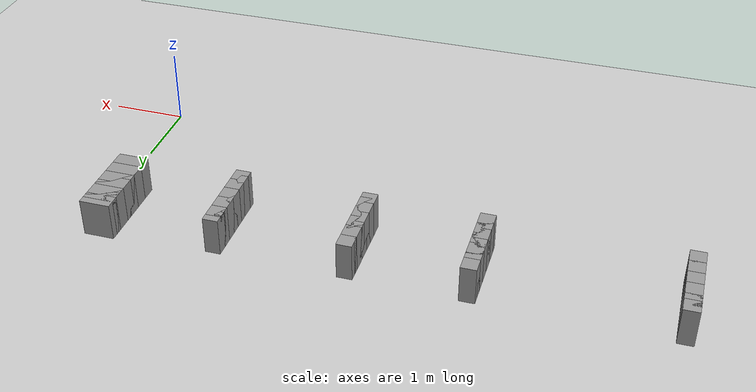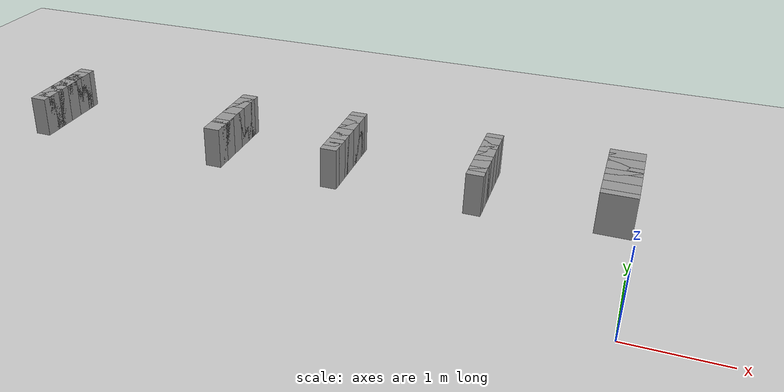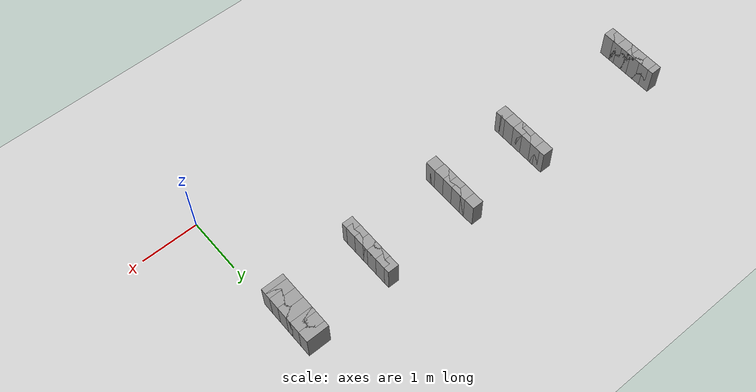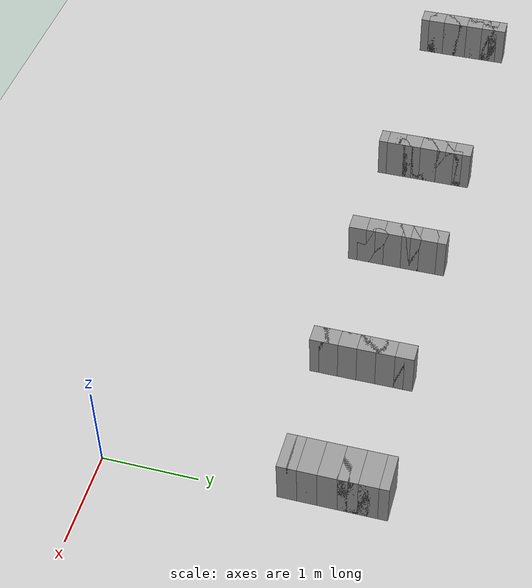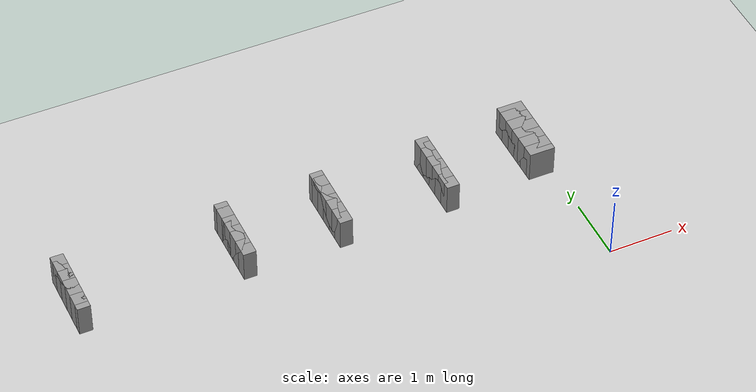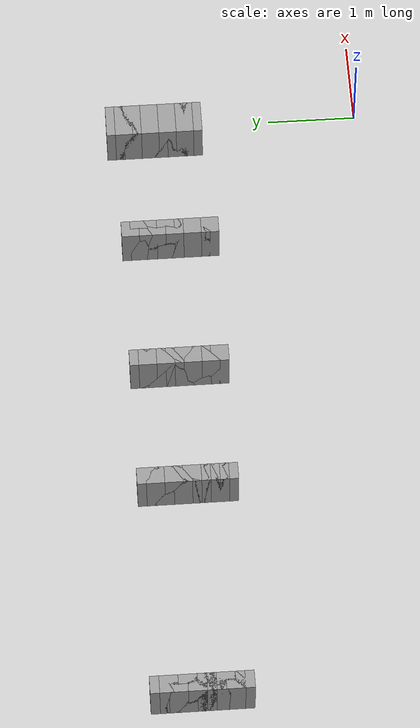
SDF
<sdf version="1.6">
 <world name="GridMap">
  <include><uri>model://sun</uri></include>
  <include><uri>model://ground_plane</uri></include>
  <model name="GridMap">
   <link name="Wall_(17.0,18.0)">
    <collision name="Wall_(17.0,18.0)_Collision">
     <geometry><box><size>0.2 0.2 0.5</size></box></geometry>
     <pose>-1.7000000000000002 1.8 0.25 0 -0 0</pose>
    </collision>
    <inertial>
     <mass>0.5</mass>
     <pose>0 0.01 0 0 0 0</pose>
     <inertia><ixx>0.004</ixx><ixy>0.001</ixy><ixz>0</ixz><iyy>0.006</iyy><iyz>0</iyz><izz>0.007</izz></inertia>
    </inertial>
    <visual name="Wall_(17.0,18.0)_Visual">
     <geometry><box><size>0.2 0.2 0.5</size></box></geometry>
     <pose>-1.7000000000000002 1.8 0.25 0 -0 0</pose>
     <material>
      <script><uri>file://media/materials/scripts/gazebo.material</uri><name>Gazebo/Grey</name></script>
      <ambient>1 1 1 1</ambient>
     </material>
     <meta><layer>0</layer></meta>
    </visual>
   </link>
   <link name="Wall_(34.0,18.0)">
    <collision name="Wall_(34.0,18.0)_Collision">
     <geometry><box><size>0.2 0.2 0.5</size></box></geometry>
     <pose>-3.4000000000000004 1.8 0.25 0 -0 0</pose>
    </collision>
    <inertial>
     <mass>0.5</mass>
     <pose>0 0.01 0 0 0 0</pose>
     <inertia><ixx>0.004</ixx><ixy>0.001</ixy><ixz>0</ixz><iyy>0.006</iyy><iyz>0</iyz><izz>0.007</izz></inertia>
    </inertial>
    <visual name="Wall_(34.0,18.0)_Visual">
     <geometry><box><size>0.2 0.2 0.5</size></box></geometry>
     <pose>-3.4000000000000004 1.8 0.25 0 -0 0</pose>
     <material>
      <script><uri>file://media/materials/scripts/gazebo.material</uri><name>Gazebo/Grey</name></script>
      <ambient>1 1 1 1</ambient>
     </material>
     <meta><layer>0</layer></meta>
    </visual>
   </link>
   <link name="Wall_(49.0,18.0)">
    <collision name="Wall_(49.0,18.0)_Collision">
     <geometry><box><size>0.2 0.2 0.5</size></box></geometry>
     <pose>-4.9 1.8 0.25 0 -0 0</pose>
    </collision>
    <inertial>
     <mass>0.5</mass>
     <pose>0 0.01 0 0 0 0</pose>
     <inertia><ixx>0.004</ixx><ixy>0.001</ixy><ixz>0</ixz><iyy>0.006</iyy><iyz>0</iyz><izz>0.007</izz></inertia>
    </inertial>
    <visual name="Wall_(49.0,18.0)_Visual">
     <geometry><box><size>0.2 0.2 0.5</size></box></geometry>
     <pose>-4.9 1.8 0.25 0 -0 0</pose>
     <material>
      <script><uri>file://media/materials/scripts/gazebo.material</uri><name>Gazebo/Grey</name></script>
      <ambient>1 1 1 1</ambient>
     </material>
     <meta><layer>0</layer></meta>
    </visual>
   </link>
   <link name="Wall_(74.0,18.0)">
    <collision name="Wall_(74.0,18.0)_Collision">
     <geometry><box><size>0.2 0.2 0.5</size></box></geometry>
     <pose>-7.4 1.8 0.25 0 -0 0</pose>
    </collision>
    <inertial>
     <mass>0.5</mass>
     <pose>0 0.01 0 0 0 0</pose>
     <inertia><ixx>0.004</ixx><ixy>0.001</ixy><ixz>0</ixz><iyy>0.006</iyy><iyz>0</iyz><izz>0.007</izz></inertia>
    </inertial>
    <visual name="Wall_(74.0,18.0)_Visual">
     <geometry><box><size>0.2 0.2 0.5</size></box></geometry>
     <pose>-7.4 1.8 0.25 0 -0 0</pose>
     <material>
      <script><uri>file://media/materials/scripts/gazebo.material</uri><name>Gazebo/Grey</name></script>
      <ambient>1 1 1 1</ambient>
     </material>
     <meta><layer>0</layer></meta>
    </visual>
   </link>
   <link name="Wall_(2.0,19.0)">
    <collision name="Wall_(2.0,19.0)_Collision">
     <geometry><box><size>0.4 0.2 0.5</size></box></geometry>
     <pose>-0.2 1.9000000000000001 0.25 0 -0 0</pose>
    </collision>
    <inertial>
     <mass>0.5</mass>
     <pose>0 0.01 0 0 0 0</pose>
     <inertia><ixx>0.004</ixx><ixy>0.001</ixy><ixz>0</ixz><iyy>0.006</iyy><iyz>0</iyz><izz>0.007</izz></inertia>
    </inertial>
    <visual name="Wall_(2.0,19.0)_Visual">
     <geometry><box><size>0.4 0.2 0.5</size></box></geometry>
     <pose>-0.2 1.9000000000000001 0.25 0 -0 0</pose>
     <material>
      <script><uri>file://media/materials/scripts/gazebo.material</uri><name>Gazebo/Grey</name></script>
      <ambient>1 1 1 1</ambient>
     </material>
     <meta><layer>0</layer></meta>
    </visual>
   </link>
   <link name="Wall_(17.0,19.0)">
    <collision name="Wall_(17.0,19.0)_Collision">
     <geometry><box><size>0.2 0.2 0.5</size></box></geometry>
     <pose>-1.7000000000000002 1.9000000000000001 0.25 0 -0 0</pose>
    </collision>
    <inertial>
     <mass>0.5</mass>
     <pose>0 0.01 0 0 0 0</pose>
     <inertia><ixx>0.004</ixx><ixy>0.001</ixy><ixz>0</ixz><iyy>0.006</iyy><iyz>0</iyz><izz>0.007</izz></inertia>
    </inertial>
    <visual name="Wall_(17.0,19.0)_Visual">
     <geometry><box><size>0.2 0.2 0.5</size></box></geometry>
     <pose>-1.7000000000000002 1.9000000000000001 0.25 0 -0 0</pose>
     <material>
      <script><uri>file://media/materials/scripts/gazebo.material</uri><name>Gazebo/Grey</name></script>
      <ambient>1 1 1 1</ambient>
     </material>
     <meta><layer>0</layer></meta>
    </visual>
   </link>
   <link name="Wall_(34.0,19.0)">
    <collision name="Wall_(34.0,19.0)_Collision">
     <geometry><box><size>0.2 0.2 0.5</size></box></geometry>
     <pose>-3.4000000000000004 1.9000000000000001 0.25 0 -0 0</pose>
    </collision>
    <inertial>
     <mass>0.5</mass>
     <pose>0 0.01 0 0 0 0</pose>
     <inertia><ixx>0.004</ixx><ixy>0.001</ixy><ixz>0</ixz><iyy>0.006</iyy><iyz>0</iyz><izz>0.007</izz></inertia>
    </inertial>
    <visual name="Wall_(34.0,19.0)_Visual">
     <geometry><box><size>0.2 0.2 0.5</size></box></geometry>
     <pose>-3.4000000000000004 1.9000000000000001 0.25 0 -0 0</pose>
     <material>
      <script><uri>file://media/materials/scripts/gazebo.material</uri><name>Gazebo/Grey</name></script>
      <ambient>1 1 1 1</ambient>
     </material>
     <meta><layer>0</layer></meta>
    </visual>
   </link>
   <link name="Wall_(49.0,19.0)">
    <collision name="Wall_(49.0,19.0)_Collision">
     <geometry><box><size>0.2 0.2 0.5</size></box></geometry>
     <pose>-4.9 1.9000000000000001 0.25 0 -0 0</pose>
    </collision>
    <inertial>
     <mass>0.5</mass>
     <pose>0 0.01 0 0 0 0</pose>
     <inertia><ixx>0.004</ixx><ixy>0.001</ixy><ixz>0</ixz><iyy>0.006</iyy><iyz>0</iyz><izz>0.007</izz></inertia>
    </inertial>
    <visual name="Wall_(49.0,19.0)_Visual">
     <geometry><box><size>0.2 0.2 0.5</size></box></geometry>
     <pose>-4.9 1.9000000000000001 0.25 0 -0 0</pose>
     <material>
      <script><uri>file://media/materials/scripts/gazebo.material</uri><name>Gazebo/Grey</name></script>
      <ambient>1 1 1 1</ambient>
     </material>
     <meta><layer>0</layer></meta>
    </visual>
   </link>
   <link name="Wall_(74.0,19.0)">
    <collision name="Wall_(74.0,19.0)_Collision">
     <geometry><box><size>0.2 0.2 0.5</size></box></geometry>
     <pose>-7.4 1.9000000000000001 0.25 0 -0 0</pose>
    </collision>
    <inertial>
     <mass>0.5</mass>
     <pose>0 0.01 0 0 0 0</pose>
     <inertia><ixx>0.004</ixx><ixy>0.001</ixy><ixz>0</ixz><iyy>0.006</iyy><iyz>0</iyz><izz>0.007</izz></inertia>
    </inertial>
    <visual name="Wall_(74.0,19.0)_Visual">
     <geometry><box><size>0.2 0.2 0.5</size></box></geometry>
     <pose>-7.4 1.9000000000000001 0.25 0 -0 0</pose>
     <material>
      <script><uri>file://media/materials/scripts/gazebo.material</uri><name>Gazebo/Grey</name></script>
      <ambient>1 1 1 1</ambient>
     </material>
     <meta><layer>0</layer></meta>
    </visual>
   </link>
   <link name="Wall_(2.0,20.0)">
    <collision name="Wall_(2.0,20.0)_Collision">
     <geometry><box><size>0.4 0.2 0.5</size></box></geometry>
     <pose>-0.2 2.0 0.25 0 -0 0</pose>
    </collision>
    <inertial>
     <mass>0.5</mass>
     <pose>0 0.01 0 0 0 0</pose>
     <inertia><ixx>0.004</ixx><ixy>0.001</ixy><ixz>0</ixz><iyy>0.006</iyy><iyz>0</iyz><izz>0.007</izz></inertia>
    </inertial>
    <visual name="Wall_(2.0,20.0)_Visual">
     <geometry><box><size>0.4 0.2 0.5</size></box></geometry>
     <pose>-0.2 2.0 0.25 0 -0 0</pose>
     <material>
      <script><uri>file://media/materials/scripts/gazebo.material</uri><name>Gazebo/Grey</name></script>
      <ambient>1 1 1 1</ambient>
     </material>
     <meta><layer>0</layer></meta>
    </visual>
   </link>
   <link name="Wall_(17.0,20.0)">
    <collision name="Wall_(17.0,20.0)_Collision">
     <geometry><box><size>0.2 0.2 0.5</size></box></geometry>
     <pose>-1.7000000000000002 2.0 0.25 0 -0 0</pose>
    </collision>
    <inertial>
     <mass>0.5</mass>
     <pose>0 0.01 0 0 0 0</pose>
     <inertia><ixx>0.004</ixx><ixy>0.001</ixy><ixz>0</ixz><iyy>0.006</iyy><iyz>0</iyz><izz>0.007</izz></inertia>
    </inertial>
    <visual name="Wall_(17.0,20.0)_Visual">
     <geometry><box><size>0.2 0.2 0.5</size></box></geometry>
     <pose>-1.7000000000000002 2.0 0.25 0 -0 0</pose>
     <material>
      <script><uri>file://media/materials/scripts/gazebo.material</uri><name>Gazebo/Grey</name></script>
      <ambient>1 1 1 1</ambient>
     </material>
     <meta><layer>0</layer></meta>
    </visual>
   </link>
   <link name="Wall_(34.0,20.0)">
    <collision name="Wall_(34.0,20.0)_Collision">
     <geometry><box><size>0.2 0.2 0.5</size></box></geometry>
     <pose>-3.4000000000000004 2.0 0.25 0 -0 0</pose>
    </collision>
    <inertial>
     <mass>0.5</mass>
     <pose>0 0.01 0 0 0 0</pose>
     <inertia><ixx>0.004</ixx><ixy>0.001</ixy><ixz>0</ixz><iyy>0.006</iyy><iyz>0</iyz><izz>0.007</izz></inertia>
    </inertial>
    <visual name="Wall_(34.0,20.0)_Visual">
     <geometry><box><size>0.2 0.2 0.5</size></box></geometry>
     <pose>-3.4000000000000004 2.0 0.25 0 -0 0</pose>
     <material>
      <script><uri>file://media/materials/scripts/gazebo.material</uri><name>Gazebo/Grey</name></script>
      <ambient>1 1 1 1</ambient>
     </material>
     <meta><layer>0</layer></meta>
    </visual>
   </link>
   <link name="Wall_(49.0,20.0)">
    <collision name="Wall_(49.0,20.0)_Collision">
     <geometry><box><size>0.2 0.2 0.5</size></box></geometry>
     <pose>-4.9 2.0 0.25 0 -0 0</pose>
    </collision>
    <inertial>
     <mass>0.5</mass>
     <pose>0 0.01 0 0 0 0</pose>
     <inertia><ixx>0.004</ixx><ixy>0.001</ixy><ixz>0</ixz><iyy>0.006</iyy><iyz>0</iyz><izz>0.007</izz></inertia>
    </inertial>
    <visual name="Wall_(49.0,20.0)_Visual">
     <geometry><box><size>0.2 0.2 0.5</size></box></geometry>
     <pose>-4.9 2.0 0.25 0 -0 0</pose>
     <material>
      <script><uri>file://media/materials/scripts/gazebo.material</uri><name>Gazebo/Grey</name></script>
      <ambient>1 1 1 1</ambient>
     </material>
     <meta><layer>0</layer></meta>
    </visual>
   </link>
   <link name="Wall_(74.0,20.0)">
    <collision name="Wall_(74.0,20.0)_Collision">
     <geometry><box><size>0.2 0.2 0.5</size></box></geometry>
     <pose>-7.4 2.0 0.25 0 -0 0</pose>
    </collision>
    <inertial>
     <mass>0.5</mass>
     <pose>0 0.01 0 0 0 0</pose>
     <inertia><ixx>0.004</ixx><ixy>0.001</ixy><ixz>0</ixz><iyy>0.006</iyy><iyz>0</iyz><izz>0.007</izz></inertia>
    </inertial>
    <visual name="Wall_(74.0,20.0)_Visual">
     <geometry><box><size>0.2 0.2 0.5</size></box></geometry>
     <pose>-7.4 2.0 0.25 0 -0 0</pose>
     <material>
      <script><uri>file://media/materials/scripts/gazebo.material</uri><name>Gazebo/Grey</name></script>
      <ambient>1 1 1 1</ambient>
     </material>
     <meta><layer>0</layer></meta>
    </visual>
   </link>
   <link name="Wall_(2.0,21.0)">
    <collision name="Wall_(2.0,21.0)_Collision">
     <geometry><box><size>0.4 0.2 0.5</size></box></geometry>
     <pose>-0.2 2.1 0.25 0 -0 0</pose>
    </collision>
    <inertial>
     <mass>0.5</mass>
     <pose>0 0.01 0 0 0 0</pose>
     <inertia><ixx>0.004</ixx><ixy>0.001</ixy><ixz>0</ixz><iyy>0.006</iyy><iyz>0</iyz><izz>0.007</izz></inertia>
    </inertial>
    <visual name="Wall_(2.0,21.0)_Visual">
     <geometry><box><size>0.4 0.2 0.5</size></box></geometry>
     <pose>-0.2 2.1 0.25 0 -0 0</pose>
     <material>
      <script><uri>file://media/materials/scripts/gazebo.material</uri><name>Gazebo/Grey</name></script>
      <ambient>1 1 1 1</ambient>
     </material>
     <meta><layer>0</layer></meta>
    </visual>
   </link>
   <link name="Wall_(17.0,21.0)">
    <collision name="Wall_(17.0,21.0)_Collision">
     <geometry><box><size>0.2 0.2 0.5</size></box></geometry>
     <pose>-1.7000000000000002 2.1 0.25 0 -0 0</pose>
    </collision>
    <inertial>
     <mass>0.5</mass>
     <pose>0 0.01 0 0 0 0</pose>
     <inertia><ixx>0.004</ixx><ixy>0.001</ixy><ixz>0</ixz><iyy>0.006</iyy><iyz>0</iyz><izz>0.007</izz></inertia>
    </inertial>
    <visual name="Wall_(17.0,21.0)_Visual">
     <geometry><box><size>0.2 0.2 0.5</size></box></geometry>
     <pose>-1.7000000000000002 2.1 0.25 0 -0 0</pose>
     <material>
      <script><uri>file://media/materials/scripts/gazebo.material</uri><name>Gazebo/Grey</name></script>
      <ambient>1 1 1 1</ambient>
     </material>
     <meta><layer>0</layer></meta>
    </visual>
   </link>
   <link name="Wall_(34.0,21.0)">
    <collision name="Wall_(34.0,21.0)_Collision">
     <geometry><box><size>0.2 0.2 0.5</size></box></geometry>
     <pose>-3.4000000000000004 2.1 0.25 0 -0 0</pose>
    </collision>
    <inertial>
     <mass>0.5</mass>
     <pose>0 0.01 0 0 0 0</pose>
     <inertia><ixx>0.004</ixx><ixy>0.001</ixy><ixz>0</ixz><iyy>0.006</iyy><iyz>0</iyz><izz>0.007</izz></inertia>
    </inertial>
    <visual name="Wall_(34.0,21.0)_Visual">
     <geometry><box><size>0.2 0.2 0.5</size></box></geometry>
     <pose>-3.4000000000000004 2.1 0.25 0 -0 0</pose>
     <material>
      <script><uri>file://media/materials/scripts/gazebo.material</uri><name>Gazebo/Grey</name></script>
      <ambient>1 1 1 1</ambient>
     </material>
     <meta><layer>0</layer></meta>
    </visual>
   </link>
   <link name="Wall_(49.0,21.0)">
    <collision name="Wall_(49.0,21.0)_Collision">
     <geometry><box><size>0.2 0.2 0.5</size></box></geometry>
     <pose>-4.9 2.1 0.25 0 -0 0</pose>
    </collision>
    <inertial>
     <mass>0.5</mass>
     <pose>0 0.01 0 0 0 0</pose>
     <inertia><ixx>0.004</ixx><ixy>0.001</ixy><ixz>0</ixz><iyy>0.006</iyy><iyz>0</iyz><izz>0.007</izz></inertia>
    </inertial>
    <visual name="Wall_(49.0,21.0)_Visual">
     <geometry><box><size>0.2 0.2 0.5</size></box></geometry>
     <pose>-4.9 2.1 0.25 0 -0 0</pose>
     <material>
      <script><uri>file://media/materials/scripts/gazebo.material</uri><name>Gazebo/Grey</name></script>
      <ambient>1 1 1 1</ambient>
     </material>
     <meta><layer>0</layer></meta>
    </visual>
   </link>
   <link name="Wall_(74.0,21.0)">
    <collision name="Wall_(74.0,21.0)_Collision">
     <geometry><box><size>0.2 0.2 0.5</size></box></geometry>
     <pose>-7.4 2.1 0.25 0 -0 0</pose>
    </collision>
    <inertial>
     <mass>0.5</mass>
     <pose>0 0.01 0 0 0 0</pose>
     <inertia><ixx>0.004</ixx><ixy>0.001</ixy><ixz>0</ixz><iyy>0.006</iyy><iyz>0</iyz><izz>0.007</izz></inertia>
    </inertial>
    <visual name="Wall_(74.0,21.0)_Visual">
     <geometry><box><size>0.2 0.2 0.5</size></box></geometry>
     <pose>-7.4 2.1 0.25 0 -0 0</pose>
     <material>
      <script><uri>file://media/materials/scripts/gazebo.material</uri><name>Gazebo/Grey</name></script>
      <ambient>1 1 1 1</ambient>
     </material>
     <meta><layer>0</layer></meta>
    </visual>
   </link>
   <link name="Wall_(2.0,22.0)">
    <collision name="Wall_(2.0,22.0)_Collision">
     <geometry><box><size>0.4 0.2 0.5</size></box></geometry>
     <pose>-0.2 2.2 0.25 0 -0 0</pose>
    </collision>
    <inertial>
     <mass>0.5</mass>
     <pose>0 0.01 0 0 0 0</pose>
     <inertia><ixx>0.004</ixx><ixy>0.001</ixy><ixz>0</ixz><iyy>0.006</iyy><iyz>0</iyz><izz>0.007</izz></inertia>
    </inertial>
    <visual name="Wall_(2.0,22.0)_Visual">
     <geometry><box><size>0.4 0.2 0.5</size></box></geometry>
     <pose>-0.2 2.2 0.25 0 -0 0</pose>
     <material>
      <script><uri>file://media/materials/scripts/gazebo.material</uri><name>Gazebo/Grey</name></script>
      <ambient>1 1 1 1</ambient>
     </material>
     <meta><layer>0</layer></meta>
    </visual>
   </link>
   <link name="Wall_(17.0,22.0)">
    <collision name="Wall_(17.0,22.0)_Collision">
     <geometry><box><size>0.2 0.2 0.5</size></box></geometry>
     <pose>-1.7000000000000002 2.2 0.25 0 -0 0</pose>
    </collision>
    <inertial>
     <mass>0.5</mass>
     <pose>0 0.01 0 0 0 0</pose>
     <inertia><ixx>0.004</ixx><ixy>0.001</ixy><ixz>0</ixz><iyy>0.006</iyy><iyz>0</iyz><izz>0.007</izz></inertia>
    </inertial>
    <visual name="Wall_(17.0,22.0)_Visual">
     <geometry><box><size>0.2 0.2 0.5</size></box></geometry>
     <pose>-1.7000000000000002 2.2 0.25 0 -0 0</pose>
     <material>
      <script><uri>file://media/materials/scripts/gazebo.material</uri><name>Gazebo/Grey</name></script>
      <ambient>1 1 1 1</ambient>
     </material>
     <meta><layer>0</layer></meta>
    </visual>
   </link>
   <link name="Wall_(34.0,22.0)">
    <collision name="Wall_(34.0,22.0)_Collision">
     <geometry><box><size>0.2 0.2 0.5</size></box></geometry>
     <pose>-3.4000000000000004 2.2 0.25 0 -0 0</pose>
    </collision>
    <inertial>
     <mass>0.5</mass>
     <pose>0 0.01 0 0 0 0</pose>
     <inertia><ixx>0.004</ixx><ixy>0.001</ixy><ixz>0</ixz><iyy>0.006</iyy><iyz>0</iyz><izz>0.007</izz></inertia>
    </inertial>
    <visual name="Wall_(34.0,22.0)_Visual">
     <geometry><box><size>0.2 0.2 0.5</size></box></geometry>
     <pose>-3.4000000000000004 2.2 0.25 0 -0 0</pose>
     <material>
      <script><uri>file://media/materials/scripts/gazebo.material</uri><name>Gazebo/Grey</name></script>
      <ambient>1 1 1 1</ambient>
     </material>
     <meta><layer>0</layer></meta>
    </visual>
   </link>
   <link name="Wall_(49.0,22.0)">
    <collision name="Wall_(49.0,22.0)_Collision">
     <geometry><box><size>0.2 0.2 0.5</size></box></geometry>
     <pose>-4.9 2.2 0.25 0 -0 0</pose>
    </collision>
    <inertial>
     <mass>0.5</mass>
     <pose>0 0.01 0 0 0 0</pose>
     <inertia><ixx>0.004</ixx><ixy>0.001</ixy><ixz>0</ixz><iyy>0.006</iyy><iyz>0</iyz><izz>0.007</izz></inertia>
    </inertial>
    <visual name="Wall_(49.0,22.0)_Visual">
     <geometry><box><size>0.2 0.2 0.5</size></box></geometry>
     <pose>-4.9 2.2 0.25 0 -0 0</pose>
     <material>
      <script><uri>file://media/materials/scripts/gazebo.material</uri><name>Gazebo/Grey</name></script>
      <ambient>1 1 1 1</ambient>
     </material>
     <meta><layer>0</layer></meta>
    </visual>
   </link>
   <link name="Wall_(74.0,22.0)">
    <collision name="Wall_(74.0,22.0)_Collision">
     <geometry><box><size>0.2 0.2 0.5</size></box></geometry>
     <pose>-7.4 2.2 0.25 0 -0 0</pose>
    </collision>
    <inertial>
     <mass>0.5</mass>
     <pose>0 0.01 0 0 0 0</pose>
     <inertia><ixx>0.004</ixx><ixy>0.001</ixy><ixz>0</ixz><iyy>0.006</iyy><iyz>0</iyz><izz>0.007</izz></inertia>
    </inertial>
    <visual name="Wall_(74.0,22.0)_Visual">
     <geometry><box><size>0.2 0.2 0.5</size></box></geometry>
     <pose>-7.4 2.2 0.25 0 -0 0</pose>
     <material>
      <script><uri>file://media/materials/scripts/gazebo.material</uri><name>Gazebo/Grey</name></script>
      <ambient>1 1 1 1</ambient>
     </material>
     <meta><layer>0</layer></meta>
    </visual>
   </link>
   <link name="Wall_(2.0,23.0)">
    <collision name="Wall_(2.0,23.0)_Collision">
     <geometry><box><size>0.4 0.2 0.5</size></box></geometry>
     <pose>-0.2 2.3000000000000003 0.25 0 -0 0</pose>
    </collision>
    <inertial>
     <mass>0.5</mass>
     <pose>0 0.01 0 0 0 0</pose>
     <inertia><ixx>0.004</ixx><ixy>0.001</ixy><ixz>0</ixz><iyy>0.006</iyy><iyz>0</iyz><izz>0.007</izz></inertia>
    </inertial>
    <visual name="Wall_(2.0,23.0)_Visual">
     <geometry><box><size>0.4 0.2 0.5</size></box></geometry>
     <pose>-0.2 2.3000000000000003 0.25 0 -0 0</pose>
     <material>
      <script><uri>file://media/materials/scripts/gazebo.material</uri><name>Gazebo/Grey</name></script>
      <ambient>1 1 1 1</ambient>
     </material>
     <meta><layer>0</layer></meta>
    </visual>
   </link>
   <link name="Wall_(17.0,23.0)">
    <collision name="Wall_(17.0,23.0)_Collision">
     <geometry><box><size>0.2 0.2 0.5</size></box></geometry>
     <pose>-1.7000000000000002 2.3000000000000003 0.25 0 -0 0</pose>
    </collision>
    <inertial>
     <mass>0.5</mass>
     <pose>0 0.01 0 0 0 0</pose>
     <inertia><ixx>0.004</ixx><ixy>0.001</ixy><ixz>0</ixz><iyy>0.006</iyy><iyz>0</iyz><izz>0.007</izz></inertia>
    </inertial>
    <visual name="Wall_(17.0,23.0)_Visual">
     <geometry><box><size>0.2 0.2 0.5</size></box></geometry>
     <pose>-1.7000000000000002 2.3000000000000003 0.25 0 -0 0</pose>
     <material>
      <script><uri>file://media/materials/scripts/gazebo.material</uri><name>Gazebo/Grey</name></script>
      <ambient>1 1 1 1</ambient>
     </material>
     <meta><layer>0</layer></meta>
    </visual>
   </link>
   <link name="Wall_(34.0,23.0)">
    <collision name="Wall_(34.0,23.0)_Collision">
     <geometry><box><size>0.2 0.2 0.5</size></box></geometry>
     <pose>-3.4000000000000004 2.3000000000000003 0.25 0 -0 0</pose>
    </collision>
    <inertial>
     <mass>0.5</mass>
     <pose>0 0.01 0 0 0 0</pose>
     <inertia><ixx>0.004</ixx><ixy>0.001</ixy><ixz>0</ixz><iyy>0.006</iyy><iyz>0</iyz><izz>0.007</izz></inertia>
    </inertial>
    <visual name="Wall_(34.0,23.0)_Visual">
     <geometry><box><size>0.2 0.2 0.5</size></box></geometry>
     <pose>-3.4000000000000004 2.3000000000000003 0.25 0 -0 0</pose>
     <material>
      <script><uri>file://media/materials/scripts/gazebo.material</uri><name>Gazebo/Grey</name></script>
      <ambient>1 1 1 1</ambient>
     </material>
     <meta><layer>0</layer></meta>
    </visual>
   </link>
   <link name="Wall_(49.0,23.0)">
    <collision name="Wall_(49.0,23.0)_Collision">
     <geometry><box><size>0.2 0.2 0.5</size></box></geometry>
     <pose>-4.9 2.3000000000000003 0.25 0 -0 0</pose>
    </collision>
    <inertial>
     <mass>0.5</mass>
     <pose>0 0.01 0 0 0 0</pose>
     <inertia><ixx>0.004</ixx><ixy>0.001</ixy><ixz>0</ixz><iyy>0.006</iyy><iyz>0</iyz><izz>0.007</izz></inertia>
    </inertial>
    <visual name="Wall_(49.0,23.0)_Visual">
     <geometry><box><size>0.2 0.2 0.5</size></box></geometry>
     <pose>-4.9 2.3000000000000003 0.25 0 -0 0</pose>
     <material>
      <script><uri>file://media/materials/scripts/gazebo.material</uri><name>Gazebo/Grey</name></script>
      <ambient>1 1 1 1</ambient>
     </material>
     <meta><layer>0</layer></meta>
    </visual>
   </link>
   <link name="Wall_(74.0,23.0)">
    <collision name="Wall_(74.0,23.0)_Collision">
     <geometry><box><size>0.2 0.2 0.5</size></box></geometry>
     <pose>-7.4 2.3000000000000003 0.25 0 -0 0</pose>
    </collision>
    <inertial>
     <mass>0.5</mass>
     <pose>0 0.01 0 0 0 0</pose>
     <inertia><ixx>0.004</ixx><ixy>0.001</ixy><ixz>0</ixz><iyy>0.006</iyy><iyz>0</iyz><izz>0.007</izz></inertia>
    </inertial>
    <visual name="Wall_(74.0,23.0)_Visual">
     <geometry><box><size>0.2 0.2 0.5</size></box></geometry>
     <pose>-7.4 2.3000000000000003 0.25 0 -0 0</pose>
     <material>
      <script><uri>file://media/materials/scripts/gazebo.material</uri><name>Gazebo/Grey</name></script>
      <ambient>1 1 1 1</ambient>
     </material>
     <meta><layer>0</layer></meta>
    </visual>
   </link>
   <link name="Wall_(2.0,24.0)">
    <collision name="Wall_(2.0,24.0)_Collision">
     <geometry><box><size>0.4 0.2 0.5</size></box></geometry>
     <pose>-0.2 2.4000000000000004 0.25 0 -0 0</pose>
    </collision>
    <inertial>
     <mass>0.5</mass>
     <pose>0 0.01 0 0 0 0</pose>
     <inertia><ixx>0.004</ixx><ixy>0.001</ixy><ixz>0</ixz><iyy>0.006</iyy><iyz>0</iyz><izz>0.007</izz></inertia>
    </inertial>
    <visual name="Wall_(2.0,24.0)_Visual">
     <geometry><box><size>0.4 0.2 0.5</size></box></geometry>
     <pose>-0.2 2.4000000000000004 0.25 0 -0 0</pose>
     <material>
      <script><uri>file://media/materials/scripts/gazebo.material</uri><name>Gazebo/Grey</name></script>
      <ambient>1 1 1 1</ambient>
     </material>
     <meta><layer>0</layer></meta>
    </visual>
   </link>
   <link name="Wall_(17.0,24.0)">
    <collision name="Wall_(17.0,24.0)_Collision">
     <geometry><box><size>0.2 0.2 0.5</size></box></geometry>
     <pose>-1.7000000000000002 2.4000000000000004 0.25 0 -0 0</pose>
    </collision>
    <inertial>
     <mass>0.5</mass>
     <pose>0 0.01 0 0 0 0</pose>
     <inertia><ixx>0.004</ixx><ixy>0.001</ixy><ixz>0</ixz><iyy>0.006</iyy><iyz>0</iyz><izz>0.007</izz></inertia>
    </inertial>
    <visual name="Wall_(17.0,24.0)_Visual">
     <geometry><box><size>0.2 0.2 0.5</size></box></geometry>
     <pose>-1.7000000000000002 2.4000000000000004 0.25 0 -0 0</pose>
     <material>
      <script><uri>file://media/materials/scripts/gazebo.material</uri><name>Gazebo/Grey</name></script>
      <ambient>1 1 1 1</ambient>
     </material>
     <meta><layer>0</layer></meta>
    </visual>
   </link>
   <link name="Wall_(34.0,24.0)">
    <collision name="Wall_(34.0,24.0)_Collision">
     <geometry><box><size>0.2 0.2 0.5</size></box></geometry>
     <pose>-3.4000000000000004 2.4000000000000004 0.25 0 -0 0</pose>
    </collision>
    <inertial>
     <mass>0.5</mass>
     <pose>0 0.01 0 0 0 0</pose>
     <inertia><ixx>0.004</ixx><ixy>0.001</ixy><ixz>0</ixz><iyy>0.006</iyy><iyz>0</iyz><izz>0.007</izz></inertia>
    </inertial>
    <visual name="Wall_(34.0,24.0)_Visual">
     <geometry><box><size>0.2 0.2 0.5</size></box></geometry>
     <pose>-3.4000000000000004 2.4000000000000004 0.25 0 -0 0</pose>
     <material>
      <script><uri>file://media/materials/scripts/gazebo.material</uri><name>Gazebo/Grey</name></script>
      <ambient>1 1 1 1</ambient>
     </material>
     <meta><layer>0</layer></meta>
    </visual>
   </link>
   <link name="Wall_(49.0,24.0)">
    <collision name="Wall_(49.0,24.0)_Collision">
     <geometry><box><size>0.2 0.2 0.5</size></box></geometry>
     <pose>-4.9 2.4000000000000004 0.25 0 -0 0</pose>
    </collision>
    <inertial>
     <mass>0.5</mass>
     <pose>0 0.01 0 0 0 0</pose>
     <inertia><ixx>0.004</ixx><ixy>0.001</ixy><ixz>0</ixz><iyy>0.006</iyy><iyz>0</iyz><izz>0.007</izz></inertia>
    </inertial>
    <visual name="Wall_(49.0,24.0)_Visual">
     <geometry><box><size>0.2 0.2 0.5</size></box></geometry>
     <pose>-4.9 2.4000000000000004 0.25 0 -0 0</pose>
     <material>
      <script><uri>file://media/materials/scripts/gazebo.material</uri><name>Gazebo/Grey</name></script>
      <ambient>1 1 1 1</ambient>
     </material>
     <meta><layer>0</layer></meta>
    </visual>
   </link>
   <link name="Wall_(74.0,24.0)">
    <collision name="Wall_(74.0,24.0)_Collision">
     <geometry><box><size>0.2 0.2 0.5</size></box></geometry>
     <pose>-7.4 2.4000000000000004 0.25 0 -0 0</pose>
    </collision>
    <inertial>
     <mass>0.5</mass>
     <pose>0 0.01 0 0 0 0</pose>
     <inertia><ixx>0.004</ixx><ixy>0.001</ixy><ixz>0</ixz><iyy>0.006</iyy><iyz>0</iyz><izz>0.007</izz></inertia>
    </inertial>
    <visual name="Wall_(74.0,24.0)_Visual">
     <geometry><box><size>0.2 0.2 0.5</size></box></geometry>
     <pose>-7.4 2.4000000000000004 0.25 0 -0 0</pose>
     <material>
      <script><uri>file://media/materials/scripts/gazebo.material</uri><name>Gazebo/Grey</name></script>
      <ambient>1 1 1 1</ambient>
     </material>
     <meta><layer>0</layer></meta>
    </visual>
   </link>
   <link name="Wall_(2.0,25.0)">
    <collision name="Wall_(2.0,25.0)_Collision">
     <geometry><box><size>0.4 0.2 0.5</size></box></geometry>
     <pose>-0.2 2.5 0.25 0 -0 0</pose>
    </collision>
    <inertial>
     <mass>0.5</mass>
     <pose>0 0.01 0 0 0 0</pose>
     <inertia><ixx>0.004</ixx><ixy>0.001</ixy><ixz>0</ixz><iyy>0.006</iyy><iyz>0</iyz><izz>0.007</izz></inertia>
    </inertial>
    <visual name="Wall_(2.0,25.0)_Visual">
     <geometry><box><size>0.4 0.2 0.5</size></box></geometry>
     <pose>-0.2 2.5 0.25 0 -0 0</pose>
     <material>
      <script><uri>file://media/materials/scripts/gazebo.material</uri><name>Gazebo/Grey</name></script>
      <ambient>1 1 1 1</ambient>
     </material>
     <meta><layer>0</layer></meta>
    </visual>
   </link>
   <link name="Wall_(17.0,25.0)">
    <collision name="Wall_(17.0,25.0)_Collision">
     <geometry><box><size>0.2 0.2 0.5</size></box></geometry>
     <pose>-1.7000000000000002 2.5 0.25 0 -0 0</pose>
    </collision>
    <inertial>
     <mass>0.5</mass>
     <pose>0 0.01 0 0 0 0</pose>
     <inertia><ixx>0.004</ixx><ixy>0.001</ixy><ixz>0</ixz><iyy>0.006</iyy><iyz>0</iyz><izz>0.007</izz></inertia>
    </inertial>
    <visual name="Wall_(17.0,25.0)_Visual">
     <geometry><box><size>0.2 0.2 0.5</size></box></geometry>
     <pose>-1.7000000000000002 2.5 0.25 0 -0 0</pose>
     <material>
      <script><uri>file://media/materials/scripts/gazebo.material</uri><name>Gazebo/Grey</name></script>
      <ambient>1 1 1 1</ambient>
     </material>
     <meta><layer>0</layer></meta>
    </visual>
   </link>
   <link name="Wall_(34.0,25.0)">
    <collision name="Wall_(34.0,25.0)_Collision">
     <geometry><box><size>0.2 0.2 0.5</size></box></geometry>
     <pose>-3.4000000000000004 2.5 0.25 0 -0 0</pose>
    </collision>
    <inertial>
     <mass>0.5</mass>
     <pose>0 0.01 0 0 0 0</pose>
     <inertia><ixx>0.004</ixx><ixy>0.001</ixy><ixz>0</ixz><iyy>0.006</iyy><iyz>0</iyz><izz>0.007</izz></inertia>
    </inertial>
    <visual name="Wall_(34.0,25.0)_Visual">
     <geometry><box><size>0.2 0.2 0.5</size></box></geometry>
     <pose>-3.4000000000000004 2.5 0.25 0 -0 0</pose>
     <material>
      <script><uri>file://media/materials/scripts/gazebo.material</uri><name>Gazebo/Grey</name></script>
      <ambient>1 1 1 1</ambient>
     </material>
     <meta><layer>0</layer></meta>
    </visual>
   </link>
   <link name="Wall_(49.0,25.0)">
    <collision name="Wall_(49.0,25.0)_Collision">
     <geometry><box><size>0.2 0.2 0.5</size></box></geometry>
     <pose>-4.9 2.5 0.25 0 -0 0</pose>
    </collision>
    <inertial>
     <mass>0.5</mass>
     <pose>0 0.01 0 0 0 0</pose>
     <inertia><ixx>0.004</ixx><ixy>0.001</ixy><ixz>0</ixz><iyy>0.006</iyy><iyz>0</iyz><izz>0.007</izz></inertia>
    </inertial>
    <visual name="Wall_(49.0,25.0)_Visual">
     <geometry><box><size>0.2 0.2 0.5</size></box></geometry>
     <pose>-4.9 2.5 0.25 0 -0 0</pose>
     <material>
      <script><uri>file://media/materials/scripts/gazebo.material</uri><name>Gazebo/Grey</name></script>
      <ambient>1 1 1 1</ambient>
     </material>
     <meta><layer>0</layer></meta>
    </visual>
   </link>
   <link name="Wall_(74.0,25.0)">
    <collision name="Wall_(74.0,25.0)_Collision">
     <geometry><box><size>0.2 0.2 0.5</size></box></geometry>
     <pose>-7.4 2.5 0.25 0 -0 0</pose>
    </collision>
    <inertial>
     <mass>0.5</mass>
     <pose>0 0.01 0 0 0 0</pose>
     <inertia><ixx>0.004</ixx><ixy>0.001</ixy><ixz>0</ixz><iyy>0.006</iyy><iyz>0</iyz><izz>0.007</izz></inertia>
    </inertial>
    <visual name="Wall_(74.0,25.0)_Visual">
     <geometry><box><size>0.2 0.2 0.5</size></box></geometry>
     <pose>-7.4 2.5 0.25 0 -0 0</pose>
     <material>
      <script><uri>file://media/materials/scripts/gazebo.material</uri><name>Gazebo/Grey</name></script>
      <ambient>1 1 1 1</ambient>
     </material>
     <meta><layer>0</layer></meta>
    </visual>
   </link>
   <link name="Wall_(2.0,26.0)">
    <collision name="Wall_(2.0,26.0)_Collision">
     <geometry><box><size>0.4 0.2 0.5</size></box></geometry>
     <pose>-0.2 2.6 0.25 0 -0 0</pose>
    </collision>
    <inertial>
     <mass>0.5</mass>
     <pose>0 0.01 0 0 0 0</pose>
     <inertia><ixx>0.004</ixx><ixy>0.001</ixy><ixz>0</ixz><iyy>0.006</iyy><iyz>0</iyz><izz>0.007</izz></inertia>
    </inertial>
    <visual name="Wall_(2.0,26.0)_Visual">
     <geometry><box><size>0.4 0.2 0.5</size></box></geometry>
     <pose>-0.2 2.6 0.25 0 -0 0</pose>
     <material>
      <script><uri>file://media/materials/scripts/gazebo.material</uri><name>Gazebo/Grey</name></script>
      <ambient>1 1 1 1</ambient>
     </material>
     <meta><layer>0</layer></meta>
    </visual>
   </link>
   <link name="Wall_(17.0,26.0)">
    <collision name="Wall_(17.0,26.0)_Collision">
     <geometry><box><size>0.2 0.2 0.5</size></box></geometry>
     <pose>-1.7000000000000002 2.6 0.25 0 -0 0</pose>
    </collision>
    <inertial>
     <mass>0.5</mass>
     <pose>0 0.01 0 0 0 0</pose>
     <inertia><ixx>0.004</ixx><ixy>0.001</ixy><ixz>0</ixz><iyy>0.006</iyy><iyz>0</iyz><izz>0.007</izz></inertia>
    </inertial>
    <visual name="Wall_(17.0,26.0)_Visual">
     <geometry><box><size>0.2 0.2 0.5</size></box></geometry>
     <pose>-1.7000000000000002 2.6 0.25 0 -0 0</pose>
     <material>
      <script><uri>file://media/materials/scripts/gazebo.material</uri><name>Gazebo/Grey</name></script>
      <ambient>1 1 1 1</ambient>
     </material>
     <meta><layer>0</layer></meta>
    </visual>
   </link>
   <link name="Wall_(34.0,26.0)">
    <collision name="Wall_(34.0,26.0)_Collision">
     <geometry><box><size>0.2 0.2 0.5</size></box></geometry>
     <pose>-3.4000000000000004 2.6 0.25 0 -0 0</pose>
    </collision>
    <inertial>
     <mass>0.5</mass>
     <pose>0 0.01 0 0 0 0</pose>
     <inertia><ixx>0.004</ixx><ixy>0.001</ixy><ixz>0</ixz><iyy>0.006</iyy><iyz>0</iyz><izz>0.007</izz></inertia>
    </inertial>
    <visual name="Wall_(34.0,26.0)_Visual">
     <geometry><box><size>0.2 0.2 0.5</size></box></geometry>
     <pose>-3.4000000000000004 2.6 0.25 0 -0 0</pose>
     <material>
      <script><uri>file://media/materials/scripts/gazebo.material</uri><name>Gazebo/Grey</name></script>
      <ambient>1 1 1 1</ambient>
     </material>
     <meta><layer>0</layer></meta>
    </visual>
   </link>
   <link name="Wall_(49.0,26.0)">
    <collision name="Wall_(49.0,26.0)_Collision">
     <geometry><box><size>0.2 0.2 0.5</size></box></geometry>
     <pose>-4.9 2.6 0.25 0 -0 0</pose>
    </collision>
    <inertial>
     <mass>0.5</mass>
     <pose>0 0.01 0 0 0 0</pose>
     <inertia><ixx>0.004</ixx><ixy>0.001</ixy><ixz>0</ixz><iyy>0.006</iyy><iyz>0</iyz><izz>0.007</izz></inertia>
    </inertial>
    <visual name="Wall_(49.0,26.0)_Visual">
     <geometry><box><size>0.2 0.2 0.5</size></box></geometry>
     <pose>-4.9 2.6 0.25 0 -0 0</pose>
     <material>
      <script><uri>file://media/materials/scripts/gazebo.material</uri><name>Gazebo/Grey</name></script>
      <ambient>1 1 1 1</ambient>
     </material>
     <meta><layer>0</layer></meta>
    </visual>
   </link>
   <link name="Wall_(74.0,26.0)">
    <collision name="Wall_(74.0,26.0)_Collision">
     <geometry><box><size>0.2 0.2 0.5</size></box></geometry>
     <pose>-7.4 2.6 0.25 0 -0 0</pose>
    </collision>
    <inertial>
     <mass>0.5</mass>
     <pose>0 0.01 0 0 0 0</pose>
     <inertia><ixx>0.004</ixx><ixy>0.001</ixy><ixz>0</ixz><iyy>0.006</iyy><iyz>0</iyz><izz>0.007</izz></inertia>
    </inertial>
    <visual name="Wall_(74.0,26.0)_Visual">
     <geometry><box><size>0.2 0.2 0.5</size></box></geometry>
     <pose>-7.4 2.6 0.25 0 -0 0</pose>
     <material>
      <script><uri>file://media/materials/scripts/gazebo.material</uri><name>Gazebo/Grey</name></script>
      <ambient>1 1 1 1</ambient>
     </material>
     <meta><layer>0</layer></meta>
    </visual>
   </link>
   <link name="Wall_(2.0,27.0)">
    <collision name="Wall_(2.0,27.0)_Collision">
     <geometry><box><size>0.4 0.2 0.5</size></box></geometry>
     <pose>-0.2 2.7 0.25 0 -0 0</pose>
    </collision>
    <inertial>
     <mass>0.5</mass>
     <pose>0 0.01 0 0 0 0</pose>
     <inertia><ixx>0.004</ixx><ixy>0.001</ixy><ixz>0</ixz><iyy>0.006</iyy><iyz>0</iyz><izz>0.007</izz></inertia>
    </inertial>
    <visual name="Wall_(2.0,27.0)_Visual">
     <geometry><box><size>0.4 0.2 0.5</size></box></geometry>
     <pose>-0.2 2.7 0.25 0 -0 0</pose>
     <material>
      <script><uri>file://media/materials/scripts/gazebo.material</uri><name>Gazebo/Grey</name></script>
      <ambient>1 1 1 1</ambient>
     </material>
     <meta><layer>0</layer></meta>
    </visual>
   </link>
   <link name="Wall_(17.0,27.0)">
    <collision name="Wall_(17.0,27.0)_Collision">
     <geometry><box><size>0.2 0.2 0.5</size></box></geometry>
     <pose>-1.7000000000000002 2.7 0.25 0 -0 0</pose>
    </collision>
    <inertial>
     <mass>0.5</mass>
     <pose>0 0.01 0 0 0 0</pose>
     <inertia><ixx>0.004</ixx><ixy>0.001</ixy><ixz>0</ixz><iyy>0.006</iyy><iyz>0</iyz><izz>0.007</izz></inertia>
    </inertial>
    <visual name="Wall_(17.0,27.0)_Visual">
     <geometry><box><size>0.2 0.2 0.5</size></box></geometry>
     <pose>-1.7000000000000002 2.7 0.25 0 -0 0</pose>
     <material>
      <script><uri>file://media/materials/scripts/gazebo.material</uri><name>Gazebo/Grey</name></script>
      <ambient>1 1 1 1</ambient>
     </material>
     <meta><layer>0</layer></meta>
    </visual>
   </link>
   <link name="Wall_(34.0,27.0)">
    <collision name="Wall_(34.0,27.0)_Collision">
     <geometry><box><size>0.2 0.2 0.5</size></box></geometry>
     <pose>-3.4000000000000004 2.7 0.25 0 -0 0</pose>
    </collision>
    <inertial>
     <mass>0.5</mass>
     <pose>0 0.01 0 0 0 0</pose>
     <inertia><ixx>0.004</ixx><ixy>0.001</ixy><ixz>0</ixz><iyy>0.006</iyy><iyz>0</iyz><izz>0.007</izz></inertia>
    </inertial>
    <visual name="Wall_(34.0,27.0)_Visual">
     <geometry><box><size>0.2 0.2 0.5</size></box></geometry>
     <pose>-3.4000000000000004 2.7 0.25 0 -0 0</pose>
     <material>
      <script><uri>file://media/materials/scripts/gazebo.material</uri><name>Gazebo/Grey</name></script>
      <ambient>1 1 1 1</ambient>
     </material>
     <meta><layer>0</layer></meta>
    </visual>
   </link>
   <link name="Wall_(49.0,27.0)">
    <collision name="Wall_(49.0,27.0)_Collision">
     <geometry><box><size>0.2 0.2 0.5</size></box></geometry>
     <pose>-4.9 2.7 0.25 0 -0 0</pose>
    </collision>
    <inertial>
     <mass>0.5</mass>
     <pose>0 0.01 0 0 0 0</pose>
     <inertia><ixx>0.004</ixx><ixy>0.001</ixy><ixz>0</ixz><iyy>0.006</iyy><iyz>0</iyz><izz>0.007</izz></inertia>
    </inertial>
    <visual name="Wall_(49.0,27.0)_Visual">
     <geometry><box><size>0.2 0.2 0.5</size></box></geometry>
     <pose>-4.9 2.7 0.25 0 -0 0</pose>
     <material>
      <script><uri>file://media/materials/scripts/gazebo.material</uri><name>Gazebo/Grey</name></script>
      <ambient>1 1 1 1</ambient>
     </material>
     <meta><layer>0</layer></meta>
    </visual>
   </link>
   <link name="Wall_(74.0,27.0)">
    <collision name="Wall_(74.0,27.0)_Collision">
     <geometry><box><size>0.2 0.2 0.5</size></box></geometry>
     <pose>-7.4 2.7 0.25 0 -0 0</pose>
    </collision>
    <inertial>
     <mass>0.5</mass>
     <pose>0 0.01 0 0 0 0</pose>
     <inertia><ixx>0.004</ixx><ixy>0.001</ixy><ixz>0</ixz><iyy>0.006</iyy><iyz>0</iyz><izz>0.007</izz></inertia>
    </inertial>
    <visual name="Wall_(74.0,27.0)_Visual">
     <geometry><box><size>0.2 0.2 0.5</size></box></geometry>
     <pose>-7.4 2.7 0.25 0 -0 0</pose>
     <material>
      <script><uri>file://media/materials/scripts/gazebo.material</uri><name>Gazebo/Grey</name></script>
      <ambient>1 1 1 1</ambient>
     </material>
     <meta><layer>0</layer></meta>
    </visual>
   </link>
   <link name="Wall_(2.0,28.0)">
    <collision name="Wall_(2.0,28.0)_Collision">
     <geometry><box><size>0.4 0.2 0.5</size></box></geometry>
     <pose>-0.2 2.8000000000000003 0.25 0 -0 0</pose>
    </collision>
    <inertial>
     <mass>0.5</mass>
     <pose>0 0.01 0 0 0 0</pose>
     <inertia><ixx>0.004</ixx><ixy>0.001</ixy><ixz>0</ixz><iyy>0.006</iyy><iyz>0</iyz><izz>0.007</izz></inertia>
    </inertial>
    <visual name="Wall_(2.0,28.0)_Visual">
     <geometry><box><size>0.4 0.2 0.5</size></box></geometry>
     <pose>-0.2 2.8000000000000003 0.25 0 -0 0</pose>
     <material>
      <script><uri>file://media/materials/scripts/gazebo.material</uri><name>Gazebo/Grey</name></script>
      <ambient>1 1 1 1</ambient>
     </material>
     <meta><layer>0</layer></meta>
    </visual>
   </link>
   <static>1</static>
  </model>
 </world>
</sdf>
